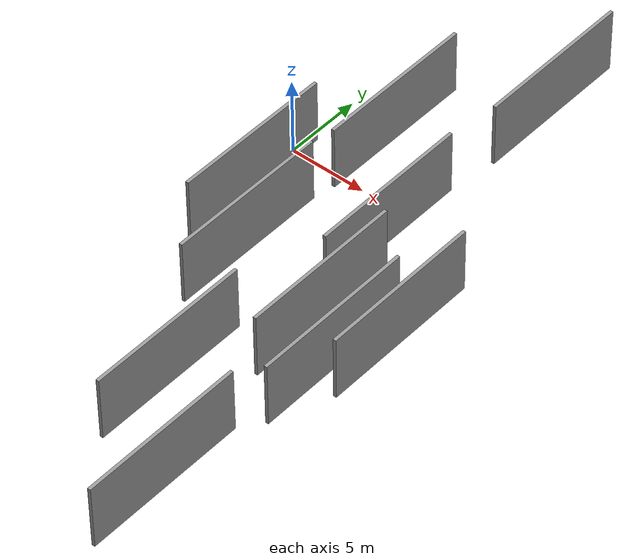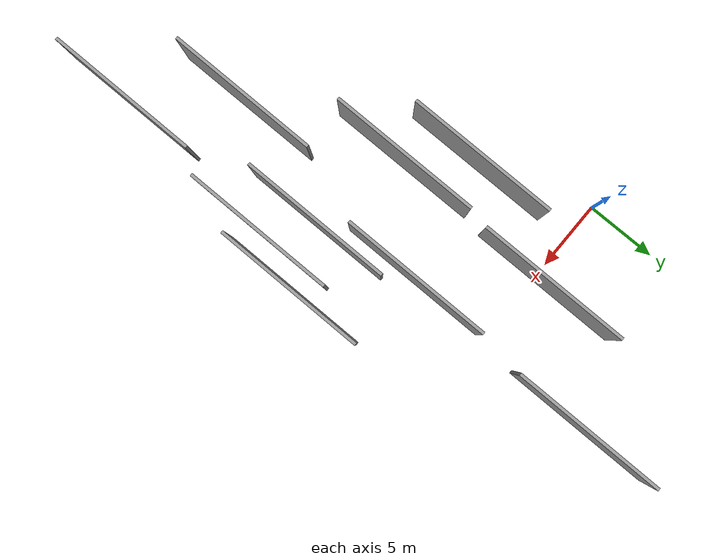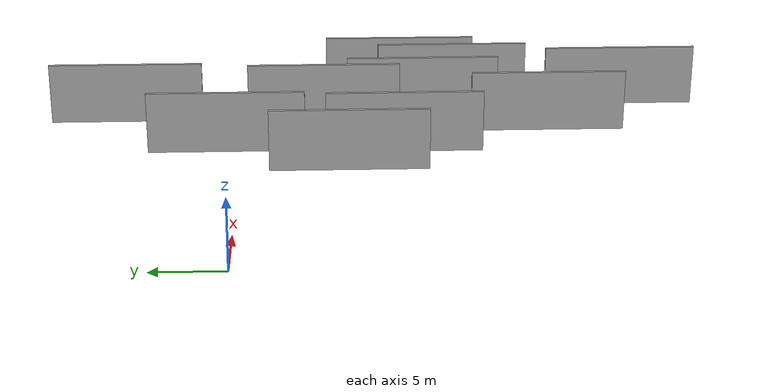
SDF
<sdf version="1.6">
 <world name="default">
  <scene>
   <sky><clouds><speed>12</speed></clouds></sky>
   <ambient>0.4 0.4 0.4 1</ambient>
   <background>0.7 0.7 0.7 1</background>
   <shadows>1</shadows>
  </scene>
  <gravity>0 0 -9.8066</gravity>
  <magnetic_field>6e-06 2.3e-05 -4.2e-05</magnetic_field>
  <physics default="0" name="default_physics" type="ode">
   <ode>
    <solver>
     <type>quick</type>
     <iters>10</iters>
     <sor>1.0</sor>
     <use_dynamic_moi_rescaling>0</use_dynamic_moi_rescaling>
    </solver>
    <constraints>
     <cfm>0</cfm>
     <erp>0.2</erp>
     <contact_max_correcting_vel>100</contact_max_correcting_vel>
     <contact_surface_layer>0.001</contact_surface_layer>
    </constraints>
   </ode>
   <max_step_size>0.004</max_step_size>
   <real_time_factor>1</real_time_factor>
   <real_time_update_rate>250</real_time_update_rate>
  </physics>
  <light name="sun" type="directional">
   <pose>0 0 10 0 0 0</pose>
   <diffuse>0.8 0.8 0.8 1</diffuse>
   <specular>0.2 0.2 0.2 1</specular>
   <attenuation>
    <range>1000</range>
    <constant>0.9</constant>
    <linear>0.01</linear>
    <quadratic>0.001</quadratic>
   </attenuation>
   <direction>-0.5 0.1 -0.9</direction>
  </light>
  <model name="grey_wall_1">
   <static>1</static>
   <pose>14.5243 -25.9311 5.0 0.000000 0.000000 1.570796</pose>
   <link name="link">
    <pose>0 0 2.00 0 0 0</pose>
    <collision name="collision"><geometry><box><size>10.00 0.2 4.00</size></box></geometry></collision>
    <visual name="visual">
     <cast_shadows>0</cast_shadows>
     <geometry><box><size>10.00 0.2 4.00</size></box></geometry>
     <material>
      <script>
       <uri>model://grey_wall/materials/scripts</uri>
       <uri>model://grey_wall/materials/textures</uri>
       <name>vrc/grey_wall</name>
      </script>
     </material>
    </visual>
   </link>
  </model>
  <model name="grey_wall_2">
   <static>1</static>
   <pose>6.7404 -11.0774 5.0 0.000000 0.000000 1.570796</pose>
   <link name="link">
    <pose>0 0 2.00 0 0 0</pose>
    <collision name="collision"><geometry><box><size>10.00 0.2 4.00</size></box></geometry></collision>
    <visual name="visual">
     <cast_shadows>0</cast_shadows>
     <geometry><box><size>10.00 0.2 4.00</size></box></geometry>
     <material>
      <script>
       <uri>model://grey_wall/materials/scripts</uri>
       <uri>model://grey_wall/materials/textures</uri>
       <name>vrc/grey_wall</name>
      </script>
     </material>
    </visual>
   </link>
  </model>
  <model name="grey_wall_3">
   <static>1</static>
   <pose>12.2723 7.0424 5.0 0.000000 0.000000 1.570796</pose>
   <link name="link">
    <pose>0 0 2.00 0 0 0</pose>
    <collision name="collision"><geometry><box><size>10.00 0.2 4.00</size></box></geometry></collision>
    <visual name="visual">
     <cast_shadows>0</cast_shadows>
     <geometry><box><size>10.00 0.2 4.00</size></box></geometry>
     <material>
      <script>
       <uri>model://grey_wall/materials/scripts</uri>
       <uri>model://grey_wall/materials/textures</uri>
       <name>vrc/grey_wall</name>
      </script>
     </material>
    </visual>
   </link>
  </model>
  <model name="grey_wall_4">
   <static>1</static>
   <pose>12.9728 -12.5533 5.0 0.000000 0.000000 1.570796</pose>
   <link name="link">
    <pose>0 0 2.00 0 0 0</pose>
    <collision name="collision"><geometry><box><size>10.00 0.2 4.00</size></box></geometry></collision>
    <visual name="visual">
     <cast_shadows>0</cast_shadows>
     <geometry><box><size>10.00 0.2 4.00</size></box></geometry>
     <material>
      <script>
       <uri>model://grey_wall/materials/scripts</uri>
       <uri>model://grey_wall/materials/textures</uri>
       <name>vrc/grey_wall</name>
      </script>
     </material>
    </visual>
   </link>
  </model>
  <model name="grey_wall_5">
   <static>1</static>
   <pose>16.9452 -11.1750 5.0 0.000000 0.000000 1.570796</pose>
   <link name="link">
    <pose>0 0 2.00 0 0 0</pose>
    <collision name="collision"><geometry><box><size>10.00 0.2 4.00</size></box></geometry></collision>
    <visual name="visual">
     <cast_shadows>0</cast_shadows>
     <geometry><box><size>10.00 0.2 4.00</size></box></geometry>
     <material>
      <script>
       <uri>model://grey_wall/materials/scripts</uri>
       <uri>model://grey_wall/materials/textures</uri>
       <name>vrc/grey_wall</name>
      </script>
     </material>
    </visual>
   </link>
  </model>
  <model name="grey_wall_6">
   <static>1</static>
   <pose>10.0177 -20.5899 5.0 0.000000 0.000000 1.570796</pose>
   <link name="link">
    <pose>0 0 2.00 0 0 0</pose>
    <collision name="collision"><geometry><box><size>10.00 0.2 4.00</size></box></geometry></collision>
    <visual name="visual">
     <cast_shadows>0</cast_shadows>
     <geometry><box><size>10.00 0.2 4.00</size></box></geometry>
     <material>
      <script>
       <uri>model://grey_wall/materials/scripts</uri>
       <uri>model://grey_wall/materials/textures</uri>
       <name>vrc/grey_wall</name>
      </script>
     </material>
    </visual>
   </link>
  </model>
  <model name="grey_wall_7">
   <static>1</static>
   <pose>15.5658 -14.6753 5.0 0.000000 0.000000 1.570796</pose>
   <link name="link">
    <pose>0 0 2.00 0 0 0</pose>
    <collision name="collision"><geometry><box><size>10.00 0.2 4.00</size></box></geometry></collision>
    <visual name="visual">
     <cast_shadows>0</cast_shadows>
     <geometry><box><size>10.00 0.2 4.00</size></box></geometry>
     <material>
      <script>
       <uri>model://grey_wall/materials/scripts</uri>
       <uri>model://grey_wall/materials/textures</uri>
       <name>vrc/grey_wall</name>
      </script>
     </material>
    </visual>
   </link>
  </model>
  <model name="grey_wall_8">
   <static>1</static>
   <pose>3.9393 -7.5251 5.0 0.000000 0.000000 1.570796</pose>
   <link name="link">
    <pose>0 0 2.00 0 0 0</pose>
    <collision name="collision"><geometry><box><size>10.00 0.2 4.00</size></box></geometry></collision>
    <visual name="visual">
     <cast_shadows>0</cast_shadows>
     <geometry><box><size>10.00 0.2 4.00</size></box></geometry>
     <material>
      <script>
       <uri>model://grey_wall/materials/scripts</uri>
       <uri>model://grey_wall/materials/textures</uri>
       <name>vrc/grey_wall</name>
      </script>
     </material>
    </visual>
   </link>
  </model>
  <model name="grey_wall_9">
   <static>1</static>
   <pose>7.0255 0.2570 5.0 0.000000 0.000000 1.570796</pose>
   <link name="link">
    <pose>0 0 2.00 0 0 0</pose>
    <collision name="collision"><geometry><box><size>10.00 0.2 4.00</size></box></geometry></collision>
    <visual name="visual">
     <cast_shadows>0</cast_shadows>
     <geometry><box><size>10.00 0.2 4.00</size></box></geometry>
     <material>
      <script>
       <uri>model://grey_wall/materials/scripts</uri>
       <uri>model://grey_wall/materials/textures</uri>
       <name>vrc/grey_wall</name>
      </script>
     </material>
    </visual>
   </link>
  </model>
  <model name="grey_wall_10">
   <static>1</static>
   <pose>11.8280 -5.9817 5.0 0.000000 0.000000 1.570796</pose>
   <link name="link">
    <pose>0 0 2.00 0 0 0</pose>
    <collision name="collision"><geometry><box><size>10.00 0.2 4.00</size></box></geometry></collision>
    <visual name="visual">
     <cast_shadows>0</cast_shadows>
     <geometry><box><size>10.00 0.2 4.00</size></box></geometry>
     <material>
      <script>
       <uri>model://grey_wall/materials/scripts</uri>
       <uri>model://grey_wall/materials/textures</uri>
       <name>vrc/grey_wall</name>
      </script>
     </material>
    </visual>
   </link>
  </model>
 </world>
</sdf>
